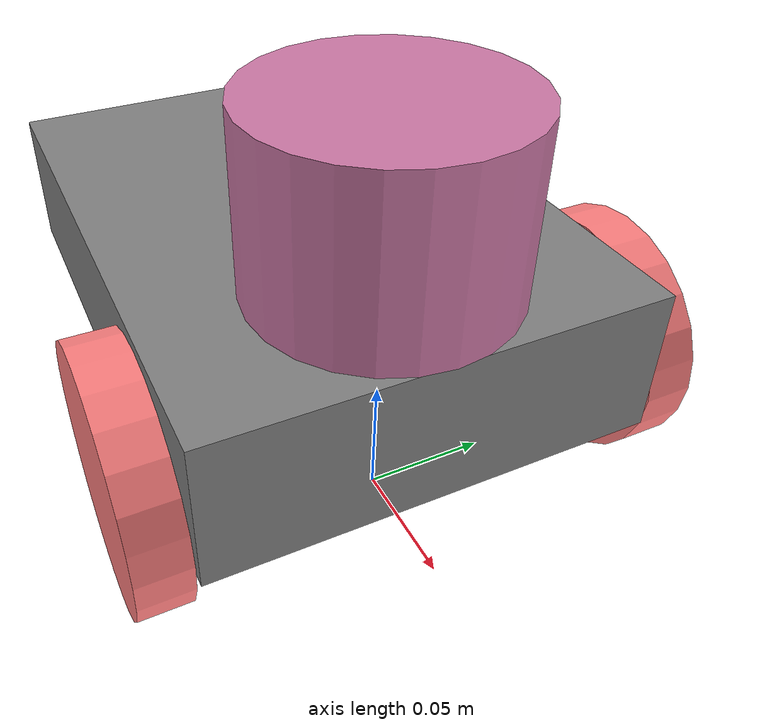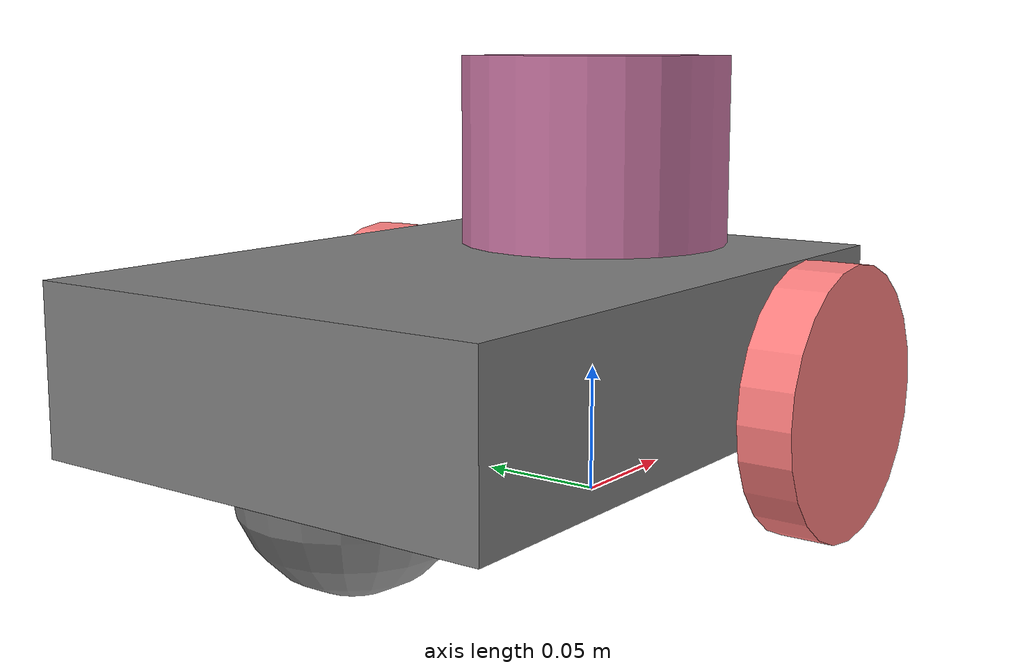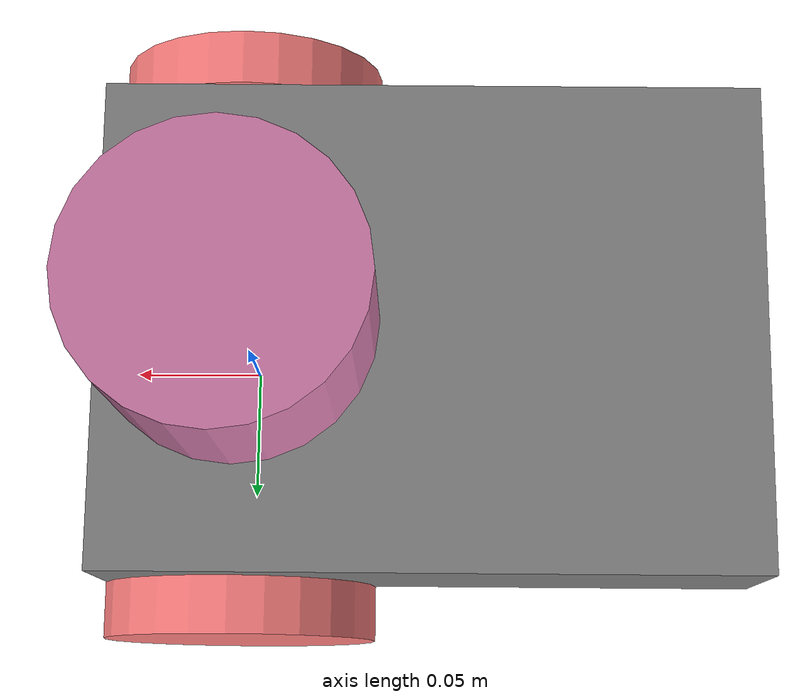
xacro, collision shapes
<?xml version="1.0"?>
<robot name="dtw_robot" xmlns:xacro="http://ros.org/wiki/xacro">
    <xacro:arg name="robot_name" default="dtw_robot"/>
    <xacro:include filename="$(find descriptions)/urdf/dtw_robot/laser_macro.xacro"/>
    <xacro:include filename="$(find descriptions)/urdf/dtw_robot/imu_macro.xacro"/>
    <xacro:include filename="$(find descriptions)/urdf/dtw_robot/move_macro.xacro"/>

    <link name="base_link"/>

    <xacro:body_macro parent="base_link"/>
    <xacro:wheel_macro prefix="wheel_left" parent="base_link" xyz="0 0.1 0.05"/>
    <xacro:wheel_macro prefix="wheel_right" parent="base_link" xyz="0 -0.1 0.05"/>
    <xacro:imu_macro prefix="imu" parent="base_link" xyz="0.0 0.0 0.0" robot_name="$(arg robot_name)"/>

    <xacro:include filename="$(find velodyne_description)/urdf/VLP-16.urdf.xacro"/>
    <xacro:VLP-16 parent="base_link" name="velodyne" topic="/points2" organize_cloud="false" hz="10" samples="440" gpu="false">
        <origin xyz="0 0 0.1" rpy="0 0 0" />
    </xacro:VLP-16>

    <gazebo>
        <plugin name="diff_drive_plugin" filename="libgazebo_ros_diff_drive.so">
            <update_rate>30</update_rate>

            <!-- wheels -->
            <left_joint>wheel_left_joint</left_joint>
            <right_joint>wheel_right_joint</right_joint>

            <!-- kinematics -->
            <wheel_separation>0.20</wheel_separation>
            <wheel_diameter>0.05</wheel_diameter>

            <!-- limits -->
            <max_wheel_torque>10</max_wheel_torque>
            <max_wheel_acceleration>0.5</max_wheel_acceleration>

            <command_topic>cmd_vel</command_topic>

            <!-- output -->
            <publish_odom>true</publish_odom>
            <publish_odom_tf>true</publish_odom_tf>
            <publish_wheel_tf>true</publish_wheel_tf>

            <odometry_topic>odom</odometry_topic>
            <odometry_frame>odom</odometry_frame>
            <robot_base_frame>base_link</robot_base_frame>
        </plugin>
    </gazebo>
</robot>

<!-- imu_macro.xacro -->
<robot name="dtw_robot" xmlns:xacro="http://ros.org/wiki/xacro">
  <xacro:macro name="imu_macro" params="parent prefix xyz robot_name">
    <joint name="imu_joint" type="fixed">
      <parent link="${parent}"/>
      <child  link="${prefix}_link"/>
      <origin xyz="${xyz}" rpy="0 0 0"/>
    </joint>
    <link name="${prefix}_link"/>
    <gazebo reference="${prefix}_link">
      <sensor name="imu_sensor" type="imu">
        <always_on>true</always_on>
        <update_rate>20</update_rate>
        <plugin name="imu_plugin" filename="libgazebo_ros_imu_sensor.so">
          <ros>
            <remapping>~/out:=imu</remapping>
          </ros>
          <frame_name>imu_link</frame_name>
        </plugin>
      </sensor>
    </gazebo>
  </xacro:macro>
</robot>

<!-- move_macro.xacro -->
<robot name="dtw_robot" xmlns:xacro="http://ros.org/wiki/xacro">
    <material name="gray">
        <color rgba="0.5 0.5 0.5 1.0"/>
    </material>
    <material name="red">
        <color rgba="1.0 0.5 0.5 1.0"/>
    </material>

    <xacro:macro name="wheel_macro" params="parent prefix xyz">
        <joint name="${prefix}_joint" type="continuous">
            <origin xyz="${xyz}" rpy="${radians(-90)} 0 0"/>
            <parent link="${parent}"/>
            <child link="${prefix}_link"/>
            <axis xyz="0 0 1"/>
            <limit velocity="12.0" effort="0.4"/>
            <dynamics damping="0.1"/>
        </joint>
        <link name="${prefix}_link">
            <inertial>
                <origin xyz="0 0 0" rpy="0 0 0"/>
                <mass value="0.1"/>
                <inertia ixx="0.0001" ixy="0.0" ixz="0.0" iyy="0.0001" iyz="0.0" izz="0.0001"/>
            </inertial>
            <visual>
                <geometry>
                    <cylinder radius="0.05" length="0.02"/>
                </geometry>
                <material name="red"/>
            </visual>
            <collision>
                <geometry>
                    <cylinder radius="0.05" length="0.02"/>
                </geometry>
            </collision>
        </link>
        <gazebo reference="${prefix}_link">
            <material>Gazebo/Red</material>
            <mu1 value="2.5"/>
            <mu2 value="2.5"/>
            <kp value="50000"/>
            <kd value="10"/>
        </gazebo>
    </xacro:macro>

    <xacro:macro name="body_macro" params="parent">
        <joint name="body_joint" type="fixed">
            <parent link="base_link"/>
            <child link="body_link"/>
            <origin xyz="-0.07 0 0.07" rpy="0 0 0"/>
        </joint>
        <link name="body_link">
            <inertial>
                <origin xyz="0 0 0" rpy="0 0 0"/>
                <mass value="1.0"/>
                <inertia ixx="0.001" ixy="0.0" ixz="0.0" iyy="0.001" iyz="0.0" izz="0.001"/>
            </inertial>
            <visual>
                <origin xyz="0 0 0" rpy="0 0 0"/>
                <geometry>
                    <box size="0.24 0.18 0.06"/>
                </geometry>
                <material name="gray"/>
            </visual>
            <collision>
                <origin xyz="0 0 0" rpy="0 0 0"/>
                <geometry>
                    <box size="0.24 0.178 0.06"/>
                </geometry>
            </collision>
        </link>
        <gazebo reference="body_link">
            <material>Gazebo/Gray</material>
        </gazebo>

        <joint name="ball_joint" type="fixed">
            <parent link="base_link"/>
            <child link="ball_link"/>
            <origin xyz="-0.14 0 0.04" rpy="0 0 0"/>
        </joint>
        <link name="ball_link">
            <visual>
                <origin xyz="0 0 0" rpy="0 0 0"/>
                <geometry>
                    <sphere radius="0.04"/>
                </geometry>
                <material name="gray"/>
            </visual>
            <collision>
                <origin xyz="0 0 0" rpy="0 0 0"/>
                <geometry>
                    <sphere radius="0.04"/>
                </geometry>
                <material name="gray"/>
            </collision>
        </link>
        <gazebo reference="ball_link">
            <material>Gazebo/Gray</material>
            <mu1 value="0.5"/>
            <mu2 value="0.5"/>
        </gazebo>
    </xacro:macro>
</robot>

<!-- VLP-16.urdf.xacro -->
<robot xmlns:xacro="http://www.ros.org/wiki/xacro" name="VLP-16">
  <xacro:property name="M_PI" value="3.1415926535897931" />
  <xacro:macro name="VLP-16" params="*origin parent:=base_link name:=velodyne tf_prefix:='' topic:=/velodyne_points organize_cloud:=false hz:=10 lasers:=16 samples:=1875 collision_range:=0.3 min_range:=0.9 max_range:=130.0 noise:=0.008 min_angle:=-${M_PI} max_angle:=${M_PI} gpu:=false">

    <joint name="${name}_base_mount_joint" type="fixed">
      <xacro:insert_block name="origin" />
      <parent link="${parent}"/>
      <child link="${name}_base_link"/>
    </joint>

    <link name="${name}_base_link">
      <inertial>
        <mass value="0.83"/>
        <origin xyz="0 0 0.03585"/>
        <inertia ixx="${(0.83 * (3.0*0.0516*0.0516 + 0.0717*0.0717)) / 12.0}" ixy="0" ixz="0"
          iyy="${(0.83 * (3.0*0.0516*0.0516 + 0.0717*0.0717)) / 12.0}" iyz="0"
          izz="${0.5 * 0.83 * (0.0516*0.0516)}"/>
      </inertial>
      <visual>
        <geometry>
          <mesh filename="package://velodyne_description/meshes/VLP16_base_1.dae" />
        </geometry>
      </visual>
      <visual>
        <geometry>
          <mesh filename="package://velodyne_description/meshes/VLP16_base_2.dae" />
        </geometry>
      </visual>
      <collision>
        <origin rpy="0 0 0" xyz="0 0 0.03585"/>
        <geometry>
          <cylinder radius="0.0516" length="0.0717"/>
        </geometry>
      </collision>
    </link>

    <joint name="${name}_base_scan_joint" type="fixed" >
      <origin xyz="0 0 0.0377" rpy="0 0 0" />
      <parent link="${name}_base_link" />
      <child link="${name}"/>
    </joint>

    <link name="${name}">
      <inertial>
        <mass value="0.01"/>
        <origin xyz="0 0 0"/>
        <inertia ixx="1e-7" ixy="0" ixz="0" iyy="1e-7" iyz="0" izz="1e-7"/>
      </inertial>
      <visual>
        <origin xyz="0 0 -0.0377" />
        <geometry>
          <mesh filename="package://velodyne_description/meshes/VLP16_scan.dae" />
        </geometry>
      </visual>
      <collision>
        <geometry>
          <sphere radius="0"/>
        </geometry>
      </collision>
    </link>

    <!-- Gazebo requires the velodyne_gazebo_plugins package -->
    <gazebo reference="${name}">
      <xacro:if value="${gpu}">
        <sensor type="gpu_ray" name="${name}-VLP16">
          <pose>0 0 0 0 0 0</pose>
          <visualize>false</visualize>
          <update_rate>${hz}</update_rate>
          <ray>
            <scan>
              <horizontal>
                <samples>${samples}</samples>
                <resolution>1</resolution>
                <min_angle>${min_angle}</min_angle>
                <max_angle>${max_angle}</max_angle>
              </horizontal>
              <vertical>
                <samples>${lasers}</samples>
                <resolution>1</resolution>
                <min_angle>-${15.0*M_PI/180.0}</min_angle>
                <max_angle> ${15.0*M_PI/180.0}</max_angle>
              </vertical>
            </scan>
            <range>
              <min>${collision_range}</min>
              <max>${max_range+1}</max>
              <resolution>0.001</resolution>
            </range>
            <noise>
              <type>gaussian</type>
              <mean>0.0</mean>
              <stddev>0.0</stddev>
            </noise>
          </ray>
          <plugin name="gazebo_ros_laser_controller" filename="libgazebo_ros_velodyne_laser.so">
            <ros>
              <remapping>~/out:=${topic}</remapping>
            </ros>
            <tf_prefix>${tf_prefix}</tf_prefix>
            <frame_name>${name}</frame_name>
            <organize_cloud>${organize_cloud}</organize_cloud>
            <min_range>${min_range}</min_range>
            <max_range>${max_range}</max_range>
            <gaussian_noise>${noise}</gaussian_noise>
          </plugin>
        </sensor>
      </xacro:if>
      <xacro:unless value="${gpu}">
        <sensor type="ray" name="${name}-VLP16">
          <pose>0 0 0 0 0 0</pose>
          <visualize>false</visualize>
          <update_rate>${hz}</update_rate>
          <ray>
            <scan>
              <horizontal>
                <samples>${samples}</samples>
                <resolution>1</resolution>
                <min_angle>${min_angle}</min_angle>
                <max_angle>${max_angle}</max_angle>
              </horizontal>
              <vertical>
                <samples>${lasers}</samples>
                <resolution>1</resolution>
                <min_angle>-${15.0*M_PI/180.0}</min_angle>
                <max_angle> ${15.0*M_PI/180.0}</max_angle>
              </vertical>
            </scan>
            <range>
              <min>${collision_range}</min>
              <max>${max_range+1}</max>
              <resolution>0.001</resolution>
            </range>
            <noise>
              <type>gaussian</type>
              <mean>0.0</mean>
              <stddev>0.0</stddev>
            </noise>
          </ray>
          <plugin name="gazebo_ros_laser_controller" filename="libgazebo_ros_velodyne_laser.so">
            <ros>
              <remapping>~/out:=${topic}</remapping>
            </ros>
            <tf_prefix>${tf_prefix}</tf_prefix>
            <frame_name>${name}</frame_name>
            <organize_cloud>${organize_cloud}</organize_cloud>
            <min_range>${min_range}</min_range>
            <max_range>${max_range}</max_range>
            <gaussian_noise>${noise}</gaussian_noise>
          </plugin>
        </sensor>
      </xacro:unless>
    </gazebo>

  </xacro:macro>
</robot>
